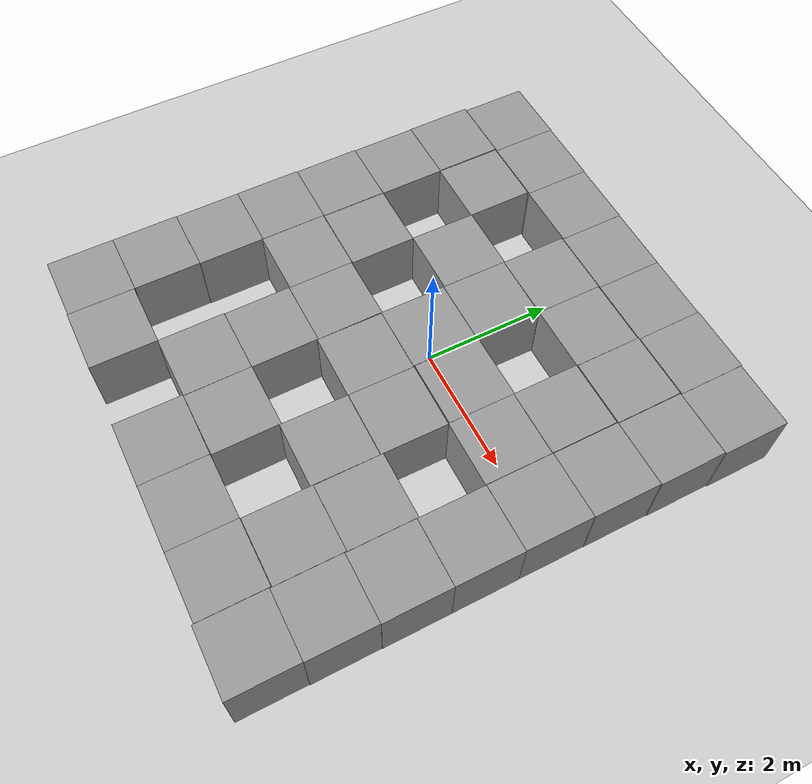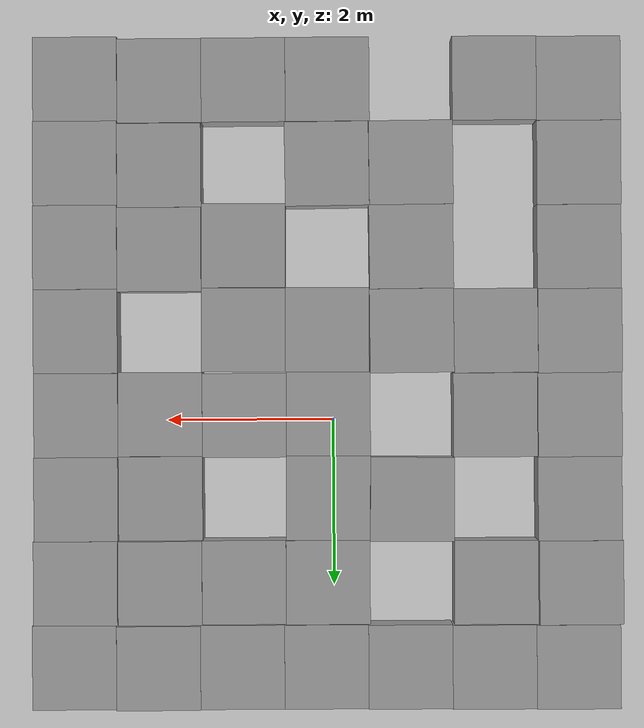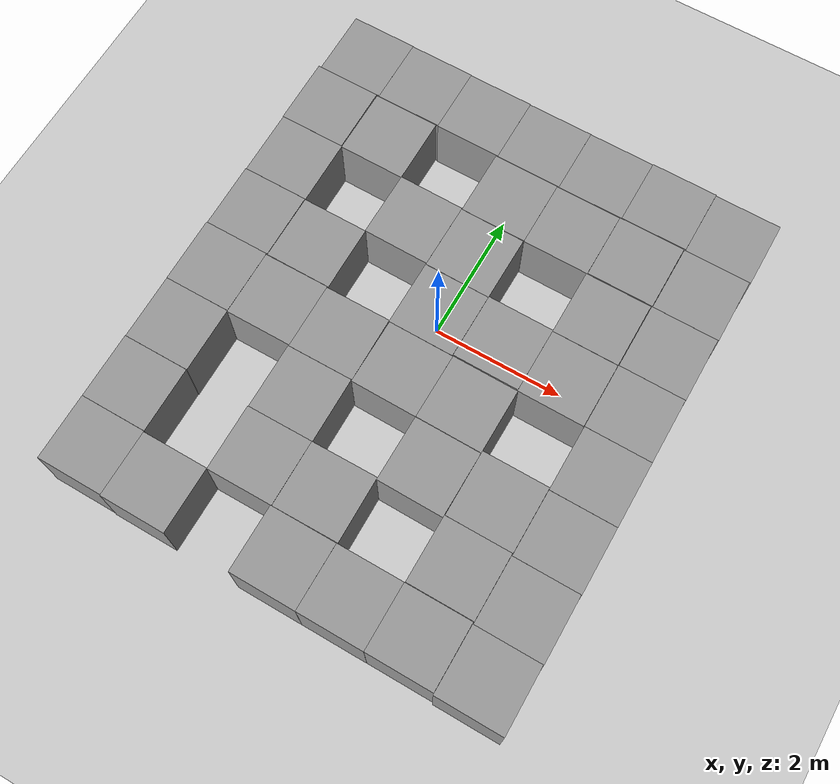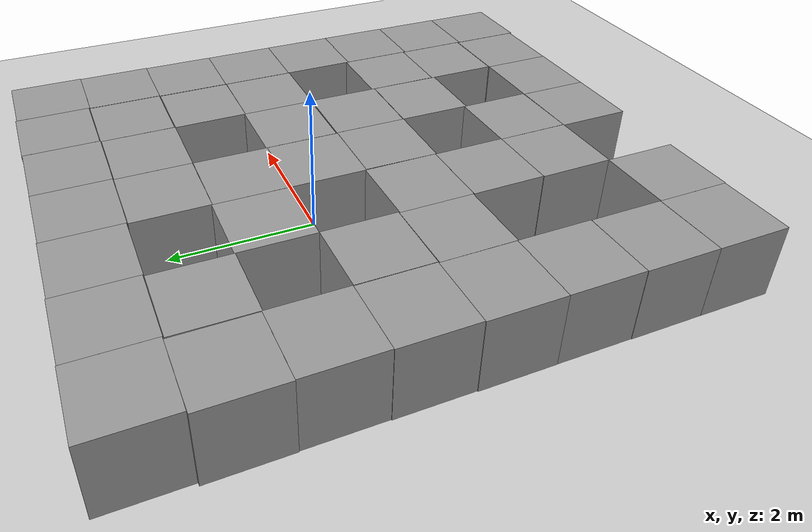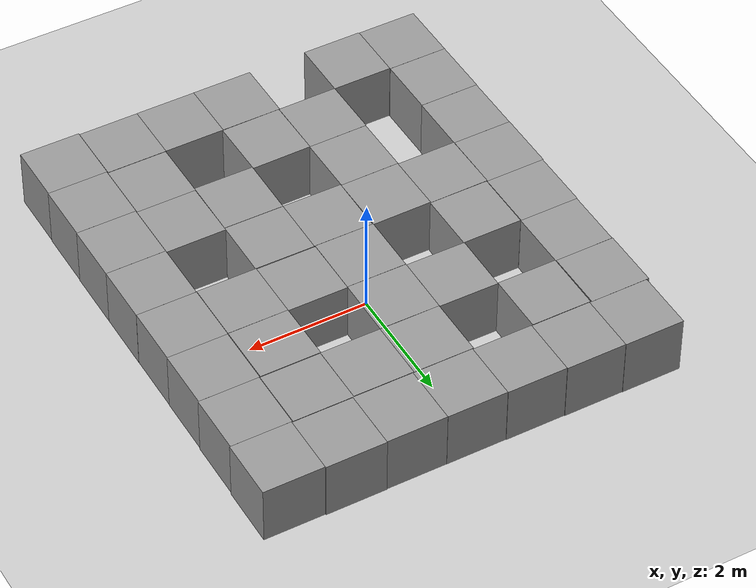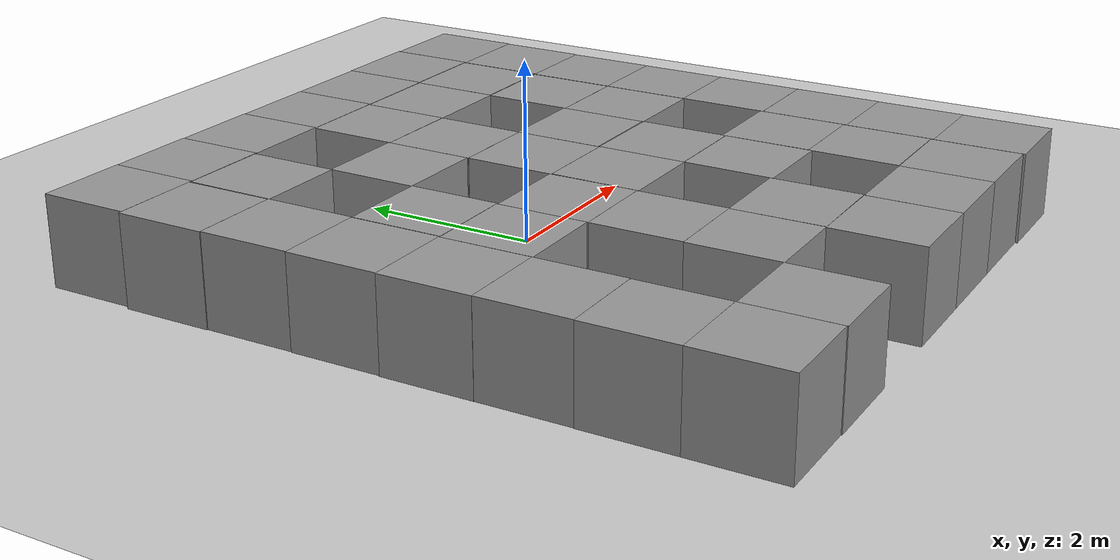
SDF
<sdf version="1.6">
 <world name="default">
  <light name="sun" type="directional">
   <pose>0 0 10 0 -0 0</pose>
   <diffuse>0.8 0.8 0.8 1</diffuse>
   <specular>0.1 0.1 0.1 1</specular>
   <attenuation>
    <range>1000</range>
    <constant>0.9</constant>
    <linear>0.01</linear>
    <quadratic>0.001</quadratic>
   </attenuation>
   <direction>-0.5 0.5 -1</direction>
  </light>
  <model name="ground_plane">
   <static>1</static>
   <link name="link">
    <collision name="collision">
     <geometry><plane><normal>0 0 1</normal><size>100 100</size></plane></geometry>
     <surface><friction><ode><mu>100</mu><mu2>50</mu2></ode></friction></surface>
    </collision>
    <visual name="visual">
     <cast_shadows>0</cast_shadows>
     <geometry><plane><normal>0 0 1</normal><size>100 100</size></plane></geometry>
     <material>
      <script><uri>file://media/materials/scripts/gazebo.material</uri><name>Gazebo/Grey</name></script>
     </material>
    </visual>
   </link>
  </model>
  <gravity>0 0 -9.8</gravity>
  <magnetic_field>6e-06 2.3e-05 -4.2e-05</magnetic_field>
  <atmosphere type="adiabatic"/>
  <physics name="default_physics" default="0" type="ode">
   <max_step_size>0.001</max_step_size>
   <real_time_factor>1</real_time_factor>
   <real_time_update_rate>1000</real_time_update_rate>
  </physics>
  <scene><ambient>0.4 0.4 0.4 1</ambient><background>0.7 0.7 0.7 1</background><shadows>1</shadows></scene>
  <spherical_coordinates>
   <surface_model>EARTH_WGS84</surface_model>
   <latitude_deg>0</latitude_deg>
   <longitude_deg>0</longitude_deg>
   <elevation>0</elevation>
   <heading_deg>0</heading_deg>
  </spherical_coordinates>
  <model name="unit_box">
   <pose>0.059862 -0.074196 0.499995 1e-05 -0 -0.004345</pose>
   <link name="link">
    <inertial>
     <mass>1</mass>
     <inertia>
      <ixx>0.166667</ixx>
      <ixy>0</ixy>
      <ixz>0</ixz>
      <iyy>0.166667</iyy>
      <iyz>0</iyz>
      <izz>0.166667</izz>
     </inertia>
    </inertial>
    <collision name="collision"><geometry><box><size>1 1 1</size></box></geometry></collision>
    <visual name="visual">
     <geometry><box><size>1 1 1</size></box></geometry>
     <material>
      <script><name>Gazebo/Grey</name><uri>file://media/materials/scripts/gazebo.material</uri></script>
     </material>
    </visual>
   </link>
  </model>
  <model name="unit_box_0">
   <pose>0.067065 -1.07512 0.499995 0 1e-05 -0.006078</pose>
   <link name="link">
    <inertial>
     <mass>1</mass>
     <inertia>
      <ixx>0.166667</ixx>
      <ixy>0</ixy>
      <ixz>0</ixz>
      <iyy>0.166667</iyy>
      <iyz>0</iyz>
      <izz>0.166667</izz>
     </inertia>
    </inertial>
    <collision name="collision"><geometry><box><size>1 1 1</size></box></geometry></collision>
    <visual name="visual">
     <geometry><box><size>1 1 1</size></box></geometry>
     <material>
      <script><name>Gazebo/Grey</name><uri>file://media/materials/scripts/gazebo.material</uri></script>
     </material>
    </visual>
   </link>
  </model>
  <model name="unit_box_1">
   <pose>1.06723 -1.07637 0.499995 1e-05 -0 -0.006366</pose>
   <link name="link">
    <inertial>
     <mass>1</mass>
     <inertia>
      <ixx>0.166667</ixx>
      <ixy>0</ixy>
      <ixz>0</ixz>
      <iyy>0.166667</iyy>
      <iyz>0</iyz>
      <izz>0.166667</izz>
     </inertia>
    </inertial>
    <collision name="collision"><geometry><box><size>1 1 1</size></box></geometry></collision>
    <visual name="visual">
     <geometry><box><size>1 1 1</size></box></geometry>
     <material>
      <script><name>Gazebo/Grey</name><uri>file://media/materials/scripts/gazebo.material</uri></script>
     </material>
    </visual>
   </link>
  </model>
  <model name="unit_box_2">
   <pose>1.06134 -0.06263 0.499995 -1e-05 -0 -0.002493</pose>
   <link name="link">
    <inertial>
     <mass>1</mass>
     <inertia>
      <ixx>0.166667</ixx>
      <ixy>0</ixy>
      <ixz>0</ixz>
      <iyy>0.166667</iyy>
      <iyz>0</iyz>
      <izz>0.166667</izz>
     </inertia>
    </inertial>
    <collision name="collision"><geometry><box><size>1 1 1</size></box></geometry></collision>
    <visual name="visual">
     <geometry><box><size>1 1 1</size></box></geometry>
     <material>
      <script><name>Gazebo/Grey</name><uri>file://media/materials/scripts/gazebo.material</uri></script>
     </material>
    </visual>
   </link>
  </model>
  <model name="unit_box_3">
   <pose>2.06142 -0.07937 0.499995 -1e-05 -0 -0.002323</pose>
   <link name="link">
    <inertial>
     <mass>1</mass>
     <inertia>
      <ixx>0.166667</ixx>
      <ixy>0</ixy>
      <ixz>0</ixz>
      <iyy>0.166667</iyy>
      <iyz>0</iyz>
      <izz>0.166667</izz>
     </inertia>
    </inertial>
    <collision name="collision"><geometry><box><size>1 1 1</size></box></geometry></collision>
    <visual name="visual">
     <geometry><box><size>1 1 1</size></box></geometry>
     <material>
      <script><name>Gazebo/Grey</name><uri>file://media/materials/scripts/gazebo.material</uri></script>
     </material>
    </visual>
   </link>
  </model>
  <model name="unit_box_4">
   <pose>1.06091 -2.08019 0.499995 -1e-05 -0 -0.006228</pose>
   <link name="link">
    <inertial>
     <mass>1</mass>
     <inertia>
      <ixx>0.166667</ixx>
      <ixy>0</ixy>
      <ixz>0</ixz>
      <iyy>0.166667</iyy>
      <iyz>0</iyz>
      <izz>0.166667</izz>
     </inertia>
    </inertial>
    <collision name="collision"><geometry><box><size>1 1 1</size></box></geometry></collision>
    <visual name="visual">
     <geometry><box><size>1 1 1</size></box></geometry>
     <material>
      <script><name>Gazebo/Grey</name><uri>file://media/materials/scripts/gazebo.material</uri></script>
     </material>
    </visual>
   </link>
  </model>
  <model name="unit_box_5">
   <pose>2.06456 -2.04186 0.5 0 -0 0.000567</pose>
   <link name="link">
    <inertial>
     <mass>1</mass>
     <inertia>
      <ixx>0.166667</ixx>
      <ixy>0</ixy>
      <ixz>0</ixz>
      <iyy>0.166667</iyy>
      <iyz>0</iyz>
      <izz>0.166667</izz>
     </inertia>
    </inertial>
    <collision name="collision"><geometry><box><size>1 1 1</size></box></geometry></collision>
    <visual name="visual">
     <geometry><box><size>1 1 1</size></box></geometry>
     <material>
      <script><name>Gazebo/Grey</name><uri>file://media/materials/scripts/gazebo.material</uri></script>
     </material>
    </visual>
   </link>
  </model>
  <model name="unit_box_6">
   <pose>2.05871 -3.04218 0.499995 0 -1e-05 0.001114</pose>
   <link name="link">
    <inertial>
     <mass>1</mass>
     <inertia>
      <ixx>0.166667</ixx>
      <ixy>0</ixy>
      <ixz>0</ixz>
      <iyy>0.166667</iyy>
      <iyz>0</iyz>
      <izz>0.166667</izz>
     </inertia>
    </inertial>
    <collision name="collision"><geometry><box><size>1 1 1</size></box></geometry></collision>
    <visual name="visual">
     <geometry><box><size>1 1 1</size></box></geometry>
     <material>
      <script><name>Gazebo/Grey</name><uri>file://media/materials/scripts/gazebo.material</uri></script>
     </material>
    </visual>
   </link>
  </model>
  <model name="unit_box_7">
   <pose>-0.939202 -1.05815 0.5 0 -0 0.006411</pose>
   <link name="link">
    <inertial>
     <mass>1</mass>
     <inertia>
      <ixx>0.166667</ixx>
      <ixy>0</ixy>
      <ixz>0</ixz>
      <iyy>0.166667</iyy>
      <iyz>0</iyz>
      <izz>0.166667</izz>
     </inertia>
    </inertial>
    <collision name="collision"><geometry><box><size>1 1 1</size></box></geometry></collision>
    <visual name="visual">
     <geometry><box><size>1 1 1</size></box></geometry>
     <material>
      <script><name>Gazebo/Grey</name><uri>file://media/materials/scripts/gazebo.material</uri></script>
     </material>
    </visual>
   </link>
  </model>
  <model name="unit_box_8">
   <pose>-0.938605 -2.05871 0.499995 1e-05 -0 0.007257</pose>
   <link name="link">
    <inertial>
     <mass>1</mass>
     <inertia>
      <ixx>0.166667</ixx>
      <ixy>0</ixy>
      <ixz>0</ixz>
      <iyy>0.166667</iyy>
      <iyz>0</iyz>
      <izz>0.166667</izz>
     </inertia>
    </inertial>
    <collision name="collision"><geometry><box><size>1 1 1</size></box></geometry></collision>
    <visual name="visual">
     <geometry><box><size>1 1 1</size></box></geometry>
     <material>
      <script><name>Gazebo/Grey</name><uri>file://media/materials/scripts/gazebo.material</uri></script>
     </material>
    </visual>
   </link>
  </model>
  <model name="unit_box_9">
   <pose>-0.940572 -3.05894 0.499995 -1e-05 -0 0.007655</pose>
   <link name="link">
    <inertial>
     <mass>1</mass>
     <inertia>
      <ixx>0.166667</ixx>
      <ixy>0</ixy>
      <ixz>0</ixz>
      <iyy>0.166667</iyy>
      <iyz>0</iyz>
      <izz>0.166667</izz>
     </inertia>
    </inertial>
    <collision name="collision"><geometry><box><size>1 1 1</size></box></geometry></collision>
    <visual name="visual">
     <geometry><box><size>1 1 1</size></box></geometry>
     <material>
      <script><name>Gazebo/Grey</name><uri>file://media/materials/scripts/gazebo.material</uri></script>
     </material>
    </visual>
   </link>
  </model>
  <model name="unit_box_10">
   <pose>0.060696 -3.05012 0.499995 -1e-05 0 0.010263</pose>
   <link name="link">
    <inertial>
     <mass>1</mass>
     <inertia>
      <ixx>0.166667</ixx>
      <ixy>0</ixy>
      <ixz>0</ixz>
      <iyy>0.166667</iyy>
      <iyz>0</iyz>
      <izz>0.166667</izz>
     </inertia>
    </inertial>
    <collision name="collision"><geometry><box><size>1 1 1</size></box></geometry></collision>
    <visual name="visual">
     <geometry><box><size>1 1 1</size></box></geometry>
     <material>
      <script><name>Gazebo/Grey</name><uri>file://media/materials/scripts/gazebo.material</uri></script>
     </material>
    </visual>
   </link>
  </model>
  <model name="unit_box_11">
   <pose>0.050027 -4.05428 0.499995 0 1e-05 0.002264</pose>
   <link name="link">
    <inertial>
     <mass>1</mass>
     <inertia>
      <ixx>0.166667</ixx>
      <ixy>0</ixy>
      <ixz>0</ixz>
      <iyy>0.166667</iyy>
      <iyz>0</iyz>
      <izz>0.166667</izz>
     </inertia>
    </inertial>
    <collision name="collision"><geometry><box><size>1 1 1</size></box></geometry></collision>
    <visual name="visual">
     <geometry><box><size>1 1 1</size></box></geometry>
     <material>
      <script><name>Gazebo/Grey</name><uri>file://media/materials/scripts/gazebo.material</uri></script>
     </material>
    </visual>
   </link>
  </model>
  <model name="unit_box_12">
   <pose>1.05042 -4.05147 0.499995 -1e-05 -0 0.001636</pose>
   <link name="link">
    <inertial>
     <mass>1</mass>
     <inertia>
      <ixx>0.166667</ixx>
      <ixy>0</ixy>
      <ixz>0</ixz>
      <iyy>0.166667</iyy>
      <iyz>0</iyz>
      <izz>0.166667</izz>
     </inertia>
    </inertial>
    <collision name="collision"><geometry><box><size>1 1 1</size></box></geometry></collision>
    <visual name="visual">
     <geometry><box><size>1 1 1</size></box></geometry>
     <material>
      <script><name>Gazebo/Grey</name><uri>file://media/materials/scripts/gazebo.material</uri></script>
     </material>
    </visual>
   </link>
  </model>
  <model name="unit_box_13">
   <pose>2.05044 -4.048 0.499995 0 -1e-05 0.001683</pose>
   <link name="link">
    <inertial>
     <mass>1</mass>
     <inertia>
      <ixx>0.166667</ixx>
      <ixy>0</ixy>
      <ixz>0</ixz>
      <iyy>0.166667</iyy>
      <iyz>0</iyz>
      <izz>0.166667</izz>
     </inertia>
    </inertial>
    <collision name="collision"><geometry><box><size>1 1 1</size></box></geometry></collision>
    <visual name="visual">
     <geometry><box><size>1 1 1</size></box></geometry>
     <material>
      <script><name>Gazebo/Grey</name><uri>file://media/materials/scripts/gazebo.material</uri></script>
     </material>
    </visual>
   </link>
  </model>
  <model name="unit_box_14">
   <pose>-1.93927 -1.05319 0.499995 -1e-05 -0 0.006376</pose>
   <link name="link">
    <inertial>
     <mass>1</mass>
     <inertia>
      <ixx>0.166667</ixx>
      <ixy>0</ixy>
      <ixz>0</ixz>
      <iyy>0.166667</iyy>
      <iyz>0</iyz>
      <izz>0.166667</izz>
     </inertia>
    </inertial>
    <collision name="collision"><geometry><box><size>1 1 1</size></box></geometry></collision>
    <visual name="visual">
     <geometry><box><size>1 1 1</size></box></geometry>
     <material>
      <script><name>Gazebo/Grey</name><uri>file://media/materials/scripts/gazebo.material</uri></script>
     </material>
    </visual>
   </link>
  </model>
  <model name="unit_box_15">
   <pose>-1.92745 -0.049031 0.499995 0 1e-05 0.001111</pose>
   <link name="link">
    <inertial>
     <mass>1</mass>
     <inertia>
      <ixx>0.166667</ixx>
      <ixy>0</ixy>
      <ixz>0</ixz>
      <iyy>0.166667</iyy>
      <iyz>0</iyz>
      <izz>0.166667</izz>
     </inertia>
    </inertial>
    <collision name="collision"><geometry><box><size>1 1 1</size></box></geometry></collision>
    <visual name="visual">
     <geometry><box><size>1 1 1</size></box></geometry>
     <material>
      <script><name>Gazebo/Grey</name><uri>file://media/materials/scripts/gazebo.material</uri></script>
     </material>
    </visual>
   </link>
  </model>
  <model name="unit_box_16">
   <pose>0.066132 0.927309 0.5 0 0 -0.007349</pose>
   <link name="link">
    <inertial>
     <mass>1</mass>
     <inertia>
      <ixx>0.166667</ixx>
      <ixy>0</ixy>
      <ixz>0</ixz>
      <iyy>0.166667</iyy>
      <iyz>0</iyz>
      <izz>0.166667</izz>
     </inertia>
    </inertial>
    <collision name="collision"><geometry><box><size>1 1 1</size></box></geometry></collision>
    <visual name="visual">
     <geometry><box><size>1 1 1</size></box></geometry>
     <material>
      <script><name>Gazebo/Grey</name><uri>file://media/materials/scripts/gazebo.material</uri></script>
     </material>
    </visual>
   </link>
  </model>
  <model name="unit_box_17">
   <pose>-0.934005 0.948803 0.5 0 0 -0.007898</pose>
   <link name="link">
    <inertial>
     <mass>1</mass>
     <inertia>
      <ixx>0.166667</ixx>
      <ixy>0</ixy>
      <ixz>0</ixz>
      <iyy>0.166667</iyy>
      <iyz>0</iyz>
      <izz>0.166667</izz>
     </inertia>
    </inertial>
    <collision name="collision"><geometry><box><size>1 1 1</size></box></geometry></collision>
    <visual name="visual">
     <geometry><box><size>1 1 1</size></box></geometry>
     <material>
      <script><name>Gazebo/Grey</name><uri>file://media/materials/scripts/gazebo.material</uri></script>
     </material>
    </visual>
   </link>
  </model>
  <model name="unit_box_18">
   <pose>2.06218 0.92226 0.499995 0 1e-05 0.000904</pose>
   <link name="link">
    <inertial>
     <mass>1</mass>
     <inertia>
      <ixx>0.166667</ixx>
      <ixy>0</ixy>
      <ixz>0</ixz>
      <iyy>0.166667</iyy>
      <iyz>0</iyz>
      <izz>0.166667</izz>
     </inertia>
    </inertial>
    <collision name="collision"><geometry><box><size>1 1 1</size></box></geometry></collision>
    <visual name="visual">
     <geometry><box><size>1 1 1</size></box></geometry>
     <material>
      <script><name>Gazebo/Grey</name><uri>file://media/materials/scripts/gazebo.material</uri></script>
     </material>
    </visual>
   </link>
  </model>
  <model name="unit_box_19">
   <pose>2.07555 1.93376 0.499995 0 1e-05 0.000977</pose>
   <link name="link">
    <inertial>
     <mass>1</mass>
     <inertia>
      <ixx>0.166667</ixx>
      <ixy>0</ixy>
      <ixz>0</ixz>
      <iyy>0.166667</iyy>
      <iyz>0</iyz>
      <izz>0.166667</izz>
     </inertia>
    </inertial>
    <collision name="collision"><geometry><box><size>1 1 1</size></box></geometry></collision>
    <visual name="visual">
     <geometry><box><size>1 1 1</size></box></geometry>
     <material>
      <script><name>Gazebo/Grey</name><uri>file://media/materials/scripts/gazebo.material</uri></script>
     </material>
    </visual>
   </link>
  </model>
  <model name="unit_box_20">
   <pose>1.07467 1.92497 0.499995 0 1e-05 -0.000767</pose>
   <link name="link">
    <inertial>
     <mass>1</mass>
     <inertia>
      <ixx>0.166667</ixx>
      <ixy>0</ixy>
      <ixz>0</ixz>
      <iyy>0.166667</iyy>
      <iyz>0</iyz>
      <izz>0.166667</izz>
     </inertia>
    </inertial>
    <collision name="collision"><geometry><box><size>1 1 1</size></box></geometry></collision>
    <visual name="visual">
     <geometry><box><size>1 1 1</size></box></geometry>
     <material>
      <script><name>Gazebo/Grey</name><uri>file://media/materials/scripts/gazebo.material</uri></script>
     </material>
    </visual>
   </link>
  </model>
  <model name="unit_box_21">
   <pose>0.074443 1.93077 0.499995 1e-05 0 -0.000719</pose>
   <link name="link">
    <inertial>
     <mass>1</mass>
     <inertia>
      <ixx>0.166667</ixx>
      <ixy>0</ixy>
      <ixz>0</ixz>
      <iyy>0.166667</iyy>
      <iyz>0</iyz>
      <izz>0.166667</izz>
     </inertia>
    </inertial>
    <collision name="collision"><geometry><box><size>1 1 1</size></box></geometry></collision>
    <visual name="visual">
     <geometry><box><size>1 1 1</size></box></geometry>
     <material>
      <script><name>Gazebo/Grey</name><uri>file://media/materials/scripts/gazebo.material</uri></script>
     </material>
    </visual>
   </link>
  </model>
  <model name="unit_box_22">
   <pose>-1.9286 1.94288 0.5 0 0 -0.00307</pose>
   <link name="link">
    <inertial>
     <mass>1</mass>
     <inertia>
      <ixx>0.166667</ixx>
      <ixy>0</ixy>
      <ixz>0</ixz>
      <iyy>0.166667</iyy>
      <iyz>0</iyz>
      <izz>0.166667</izz>
     </inertia>
    </inertial>
    <collision name="collision"><geometry><box><size>1 1 1</size></box></geometry></collision>
    <visual name="visual">
     <geometry><box><size>1 1 1</size></box></geometry>
     <material>
      <script><name>Gazebo/Grey</name><uri>file://media/materials/scripts/gazebo.material</uri></script>
     </material>
    </visual>
   </link>
  </model>
  <model name="unit_box_23">
   <pose>-2.94084 1.95496 0.5 0 -0 0.002801</pose>
   <link name="link">
    <inertial>
     <mass>1</mass>
     <inertia>
      <ixx>0.166667</ixx>
      <ixy>0</ixy>
      <ixz>0</ixz>
      <iyy>0.166667</iyy>
      <iyz>0</iyz>
      <izz>0.166667</izz>
     </inertia>
    </inertial>
    <collision name="collision"><geometry><box><size>1 1 1</size></box></geometry></collision>
    <visual name="visual">
     <geometry><box><size>1 1 1</size></box></geometry>
     <material>
      <script><name>Gazebo/Grey</name><uri>file://media/materials/scripts/gazebo.material</uri></script>
     </material>
    </visual>
   </link>
  </model>
  <model name="unit_box_24">
   <pose>-2.92829 0.954515 0.499995 0 -1e-05 0.003778</pose>
   <link name="link">
    <inertial>
     <mass>1</mass>
     <inertia>
      <ixx>0.166667</ixx>
      <ixy>0</ixy>
      <ixz>0</ixz>
      <iyy>0.166667</iyy>
      <iyz>0</iyz>
      <izz>0.166667</izz>
     </inertia>
    </inertial>
    <collision name="collision"><geometry><box><size>1 1 1</size></box></geometry></collision>
    <visual name="visual">
     <geometry><box><size>1 1 1</size></box></geometry>
     <material>
      <script><name>Gazebo/Grey</name><uri>file://media/materials/scripts/gazebo.material</uri></script>
     </material>
    </visual>
   </link>
  </model>
  <model name="unit_box_25">
   <pose>-2.93361 -0.045599 0.5 0 -0 0.00365</pose>
   <link name="link">
    <inertial>
     <mass>1</mass>
     <inertia>
      <ixx>0.166667</ixx>
      <ixy>0</ixy>
      <ixz>0</ixz>
      <iyy>0.166667</iyy>
      <iyz>0</iyz>
      <izz>0.166667</izz>
     </inertia>
    </inertial>
    <collision name="collision"><geometry><box><size>1 1 1</size></box></geometry></collision>
    <visual name="visual">
     <geometry><box><size>1 1 1</size></box></geometry>
     <material>
      <script><name>Gazebo/Grey</name><uri>file://media/materials/scripts/gazebo.material</uri></script>
     </material>
    </visual>
   </link>
  </model>
  <model name="unit_box_26">
   <pose>-2.94073 -1.04566 0.5 0 -0 0.003601</pose>
   <link name="link">
    <inertial>
     <mass>1</mass>
     <inertia>
      <ixx>0.166667</ixx>
      <ixy>0</ixy>
      <ixz>0</ixz>
      <iyy>0.166667</iyy>
      <iyz>0</iyz>
      <izz>0.166667</izz>
     </inertia>
    </inertial>
    <collision name="collision"><geometry><box><size>1 1 1</size></box></geometry></collision>
    <visual name="visual">
     <geometry><box><size>1 1 1</size></box></geometry>
     <material>
      <script><name>Gazebo/Grey</name><uri>file://media/materials/scripts/gazebo.material</uri></script>
     </material>
    </visual>
   </link>
  </model>
  <model name="unit_box_27">
   <pose>-2.93461 -2.04577 0.5 0 -0 0.003352</pose>
   <link name="link">
    <inertial>
     <mass>1</mass>
     <inertia>
      <ixx>0.166667</ixx>
      <ixy>0</ixy>
      <ixz>0</ixz>
      <iyy>0.166667</iyy>
      <iyz>0</iyz>
      <izz>0.166667</izz>
     </inertia>
    </inertial>
    <collision name="collision"><geometry><box><size>1 1 1</size></box></geometry></collision>
    <visual name="visual">
     <geometry><box><size>1 1 1</size></box></geometry>
     <material>
      <script><name>Gazebo/Grey</name><uri>file://media/materials/scripts/gazebo.material</uri></script>
     </material>
    </visual>
   </link>
  </model>
  <model name="unit_box_28">
   <pose>-2.93759 -3.04622 0.5 0 -0 0.002482</pose>
   <link name="link">
    <inertial>
     <mass>1</mass>
     <inertia>
      <ixx>0.166667</ixx>
      <ixy>0</ixy>
      <ixz>0</ixz>
      <iyy>0.166667</iyy>
      <iyz>0</iyz>
      <izz>0.166667</izz>
     </inertia>
    </inertial>
    <collision name="collision"><geometry><box><size>1 1 1</size></box></geometry></collision>
    <visual name="visual">
     <geometry><box><size>1 1 1</size></box></geometry>
     <material>
      <script><name>Gazebo/Grey</name><uri>file://media/materials/scripts/gazebo.material</uri></script>
     </material>
    </visual>
   </link>
  </model>
  <model name="unit_box_29">
   <pose>-2.93633 -4.0468 0.5 0 -0 0.001311</pose>
   <link name="link">
    <inertial>
     <mass>1</mass>
     <inertia>
      <ixx>0.166667</ixx>
      <ixy>0</ixy>
      <ixz>0</ixz>
      <iyy>0.166667</iyy>
      <iyz>0</iyz>
      <izz>0.166667</izz>
     </inertia>
    </inertial>
    <collision name="collision"><geometry><box><size>1 1 1</size></box></geometry></collision>
    <visual name="visual">
     <geometry><box><size>1 1 1</size></box></geometry>
     <material>
      <script><name>Gazebo/Grey</name><uri>file://media/materials/scripts/gazebo.material</uri></script>
     </material>
    </visual>
   </link>
  </model>
  <model name="unit_box_30">
   <pose>-1.93623 -4.05556 0.5 0 -0 0.001151</pose>
   <link name="link">
    <inertial>
     <mass>1</mass>
     <inertia>
      <ixx>0.166667</ixx>
      <ixy>0</ixy>
      <ixz>0</ixz>
      <iyy>0.166667</iyy>
      <iyz>0</iyz>
      <izz>0.166667</izz>
     </inertia>
    </inertial>
    <collision name="collision"><geometry><box><size>1 1 1</size></box></geometry></collision>
    <visual name="visual">
     <geometry><box><size>1 1 1</size></box></geometry>
     <material>
      <script><name>Gazebo/Grey</name><uri>file://media/materials/scripts/gazebo.material</uri></script>
     </material>
    </visual>
   </link>
  </model>
  <model name="unit_box_31">
   <pose>2.09705 2.94245 0.5 0 -0 0.000617</pose>
   <link name="link">
    <inertial>
     <mass>1</mass>
     <inertia>
      <ixx>0.166667</ixx>
      <ixy>0</ixy>
      <ixz>0</ixz>
      <iyy>0.166667</iyy>
      <iyz>0</iyz>
      <izz>0.166667</izz>
     </inertia>
    </inertial>
    <collision name="collision"><geometry><box><size>1 1 1</size></box></geometry></collision>
    <visual name="visual">
     <geometry><box><size>1 1 1</size></box></geometry>
     <material>
      <script><name>Gazebo/Grey</name><uri>file://media/materials/scripts/gazebo.material</uri></script>
     </material>
    </visual>
   </link>
  </model>
  <model name="unit_box_32">
   <pose>1.097 2.93366 0.5 0 -0 0.000649</pose>
   <link name="link">
    <inertial>
     <mass>1</mass>
     <inertia>
      <ixx>0.166667</ixx>
      <ixy>0</ixy>
      <ixz>0</ixz>
      <iyy>0.166667</iyy>
      <iyz>0</iyz>
      <izz>0.166667</izz>
     </inertia>
    </inertial>
    <collision name="collision"><geometry><box><size>1 1 1</size></box></geometry></collision>
    <visual name="visual">
     <geometry><box><size>1 1 1</size></box></geometry>
     <material>
      <script><name>Gazebo/Grey</name><uri>file://media/materials/scripts/gazebo.material</uri></script>
     </material>
    </visual>
   </link>
  </model>
  <model name="unit_box_33">
   <pose>0.096921 2.93562 0.499995 -0 -1e-05 0.000597</pose>
   <link name="link">
    <inertial>
     <mass>1</mass>
     <inertia>
      <ixx>0.166667</ixx>
      <ixy>0</ixy>
      <ixz>0</ixz>
      <iyy>0.166667</iyy>
      <iyz>0</iyz>
      <izz>0.166667</izz>
     </inertia>
    </inertial>
    <collision name="collision"><geometry><box><size>1 1 1</size></box></geometry></collision>
    <visual name="visual">
     <geometry><box><size>1 1 1</size></box></geometry>
     <material>
      <script><name>Gazebo/Grey</name><uri>file://media/materials/scripts/gazebo.material</uri></script>
     </material>
    </visual>
   </link>
  </model>
  <model name="unit_box_34">
   <pose>-0.903147 2.94262 0.5 0 -0 0.000612</pose>
   <link name="link">
    <inertial>
     <mass>1</mass>
     <inertia>
      <ixx>0.166667</ixx>
      <ixy>0</ixy>
      <ixz>0</ixz>
      <iyy>0.166667</iyy>
      <iyz>0</iyz>
      <izz>0.166667</izz>
     </inertia>
    </inertial>
    <collision name="collision"><geometry><box><size>1 1 1</size></box></geometry></collision>
    <visual name="visual">
     <geometry><box><size>1 1 1</size></box></geometry>
     <material>
      <script><name>Gazebo/Grey</name><uri>file://media/materials/scripts/gazebo.material</uri></script>
     </material>
    </visual>
   </link>
  </model>
  <model name="unit_box_35">
   <pose>-1.9032 2.9508 0.5 0 -0 0.000522</pose>
   <link name="link">
    <inertial>
     <mass>1</mass>
     <inertia>
      <ixx>0.166667</ixx>
      <ixy>0</ixy>
      <ixz>0</ixz>
      <iyy>0.166667</iyy>
      <iyz>0</iyz>
      <izz>0.166667</izz>
     </inertia>
    </inertial>
    <collision name="collision"><geometry><box><size>1 1 1</size></box></geometry></collision>
    <visual name="visual">
     <geometry><box><size>1 1 1</size></box></geometry>
     <material>
      <script><name>Gazebo/Grey</name><uri>file://media/materials/scripts/gazebo.material</uri></script>
     </material>
    </visual>
   </link>
  </model>
  <model name="unit_box_36">
   <pose>-2.90327 2.95623 0.5 0 -0 0.00051</pose>
   <link name="link">
    <inertial>
     <mass>1</mass>
     <inertia>
      <ixx>0.166667</ixx>
      <ixy>0</ixy>
      <ixz>0</ixz>
      <iyy>0.166667</iyy>
      <iyz>0</iyz>
      <izz>0.166667</izz>
     </inertia>
    </inertial>
    <collision name="collision"><geometry><box><size>1 1 1</size></box></geometry></collision>
    <visual name="visual">
     <geometry><box><size>1 1 1</size></box></geometry>
     <material>
      <script><name>Gazebo/Grey</name><uri>file://media/materials/scripts/gazebo.material</uri></script>
     </material>
    </visual>
   </link>
  </model>
  <model name="unit_box_37">
   <pose>3.05311 -4.07291 0.5 0 -0 0.000357</pose>
   <link name="link">
    <inertial>
     <mass>1</mass>
     <inertia>
      <ixx>0.166667</ixx>
      <ixy>0</ixy>
      <ixz>0</ixz>
      <iyy>0.166667</iyy>
      <iyz>0</iyz>
      <izz>0.166667</izz>
     </inertia>
    </inertial>
    <collision name="collision"><geometry><box><size>1 1 1</size></box></geometry></collision>
    <visual name="visual">
     <geometry><box><size>1 1 1</size></box></geometry>
     <material>
      <script><name>Gazebo/Grey</name><uri>file://media/materials/scripts/gazebo.material</uri></script>
     </material>
    </visual>
   </link>
  </model>
  <model name="unit_box_38">
   <pose>3.06051 -3.0729 0.5 0 -0 0.000354</pose>
   <link name="link">
    <inertial>
     <mass>1</mass>
     <inertia>
      <ixx>0.166667</ixx>
      <ixy>0</ixy>
      <ixz>0</ixz>
      <iyy>0.166667</iyy>
      <iyz>0</iyz>
      <izz>0.166667</izz>
     </inertia>
    </inertial>
    <collision name="collision"><geometry><box><size>1 1 1</size></box></geometry></collision>
    <visual name="visual">
     <geometry><box><size>1 1 1</size></box></geometry>
     <material>
      <script><name>Gazebo/Grey</name><uri>file://media/materials/scripts/gazebo.material</uri></script>
     </material>
    </visual>
   </link>
  </model>
  <model name="unit_box_39">
   <pose>3.06646 -2.07285 0.499995 -1e-05 -0 0.000356</pose>
   <link name="link">
    <inertial>
     <mass>1</mass>
     <inertia>
      <ixx>0.166667</ixx>
      <ixy>0</ixy>
      <ixz>0</ixz>
      <iyy>0.166667</iyy>
      <iyz>0</iyz>
      <izz>0.166667</izz>
     </inertia>
    </inertial>
    <collision name="collision"><geometry><box><size>1 1 1</size></box></geometry></collision>
    <visual name="visual">
     <geometry><box><size>1 1 1</size></box></geometry>
     <material>
      <script><name>Gazebo/Grey</name><uri>file://media/materials/scripts/gazebo.material</uri></script>
     </material>
    </visual>
   </link>
  </model>
  <model name="unit_box_40">
   <pose>3.06641 -1.07251 0.499995 0 1e-05 -6.2e-05</pose>
   <link name="link">
    <inertial>
     <mass>1</mass>
     <inertia>
      <ixx>0.166667</ixx>
      <ixy>0</ixy>
      <ixz>0</ixz>
      <iyy>0.166667</iyy>
      <iyz>0</iyz>
      <izz>0.166667</izz>
     </inertia>
    </inertial>
    <collision name="collision"><geometry><box><size>1 1 1</size></box></geometry></collision>
    <visual name="visual">
     <geometry><box><size>1 1 1</size></box></geometry>
     <material>
      <script><name>Gazebo/Grey</name><uri>file://media/materials/scripts/gazebo.material</uri></script>
     </material>
    </visual>
   </link>
  </model>
  <model name="unit_box_41">
   <pose>3.06508 -0.07229 0.5 0 0 -0.000507</pose>
   <link name="link">
    <inertial>
     <mass>1</mass>
     <inertia>
      <ixx>0.166667</ixx>
      <ixy>0</ixy>
      <ixz>0</ixz>
      <iyy>0.166667</iyy>
      <iyz>0</iyz>
      <izz>0.166667</izz>
     </inertia>
    </inertial>
    <collision name="collision"><geometry><box><size>1 1 1</size></box></geometry></collision>
    <visual name="visual">
     <geometry><box><size>1 1 1</size></box></geometry>
     <material>
      <script><name>Gazebo/Grey</name><uri>file://media/materials/scripts/gazebo.material</uri></script>
     </material>
    </visual>
   </link>
  </model>
  <model name="unit_box_42">
   <pose>3.07024 0.927715 0.499995 -0 1e-05 -0.000518</pose>
   <link name="link">
    <inertial>
     <mass>1</mass>
     <inertia>
      <ixx>0.166667</ixx>
      <ixy>0</ixy>
      <ixz>0</ixz>
      <iyy>0.166667</iyy>
      <iyz>0</iyz>
      <izz>0.166667</izz>
     </inertia>
    </inertial>
    <collision name="collision"><geometry><box><size>1 1 1</size></box></geometry></collision>
    <visual name="visual">
     <geometry><box><size>1 1 1</size></box></geometry>
     <material>
      <script><name>Gazebo/Grey</name><uri>file://media/materials/scripts/gazebo.material</uri></script>
     </material>
    </visual>
   </link>
  </model>
  <model name="unit_box_43">
   <pose>3.08197 1.92789 0.499995 1e-05 0 -0.000597</pose>
   <link name="link">
    <inertial>
     <mass>1</mass>
     <inertia>
      <ixx>0.166667</ixx>
      <ixy>0</ixy>
      <ixz>0</ixz>
      <iyy>0.166667</iyy>
      <iyz>0</iyz>
      <izz>0.166667</izz>
     </inertia>
    </inertial>
    <collision name="collision"><geometry><box><size>1 1 1</size></box></geometry></collision>
    <visual name="visual">
     <geometry><box><size>1 1 1</size></box></geometry>
     <material>
      <script><name>Gazebo/Grey</name><uri>file://media/materials/scripts/gazebo.material</uri></script>
     </material>
    </visual>
   </link>
  </model>
  <model name="unit_box_44">
   <pose>3.0977 2.92805 0.499995 1e-05 -0 -0.000474</pose>
   <link name="link">
    <inertial>
     <mass>1</mass>
     <inertia>
      <ixx>0.166667</ixx>
      <ixy>0</ixy>
      <ixz>0</ixz>
      <iyy>0.166667</iyy>
      <iyz>0</iyz>
      <izz>0.166667</izz>
     </inertia>
    </inertial>
    <collision name="collision"><geometry><box><size>1 1 1</size></box></geometry></collision>
    <visual name="visual">
     <geometry><box><size>1 1 1</size></box></geometry>
     <material>
      <script><name>Gazebo/Grey</name><uri>file://media/materials/scripts/gazebo.material</uri></script>
     </material>
    </visual>
   </link>
  </model>
 </world>
</sdf>
